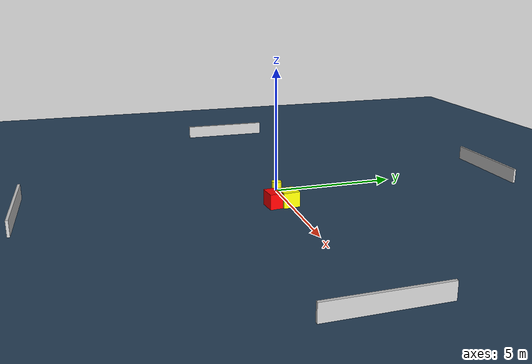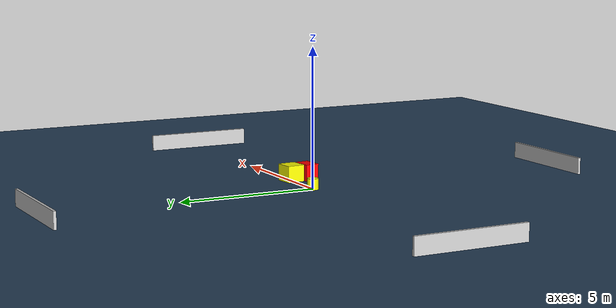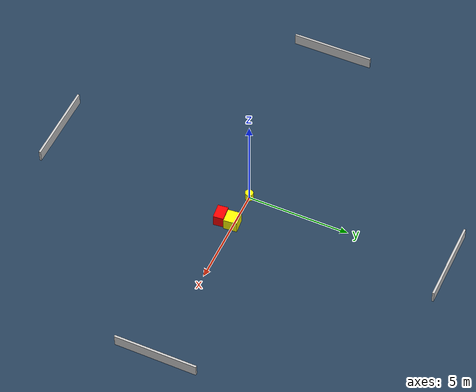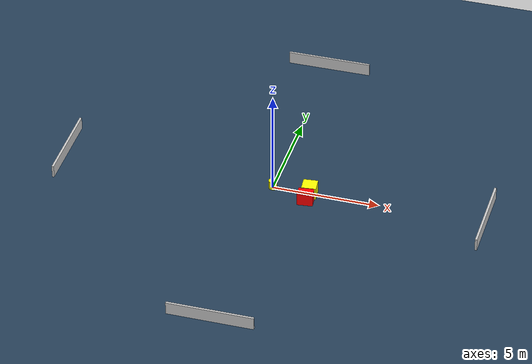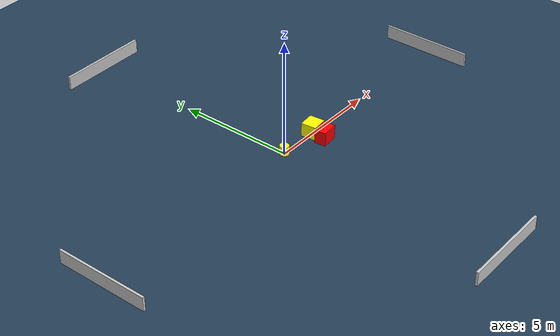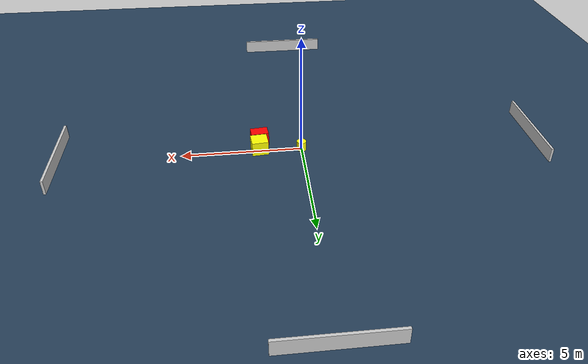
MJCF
<?xml version="1.0" ?>
<mujoco model="generated_environment">
  <option timestep="0.01" integrator="RK4" cone="elliptic"/>
  <default>
    <geom density="1"/>
  </default>
  <asset>
    <texture builtin="gradient" height="3072" name="skybox" rgb1="0.3 0.5 0.7" rgb2="0 0 0" type="skybox" width="512"/>
    <texture builtin="checker" height="300" name="groundplane" rgb1="0.2 0.3 0.4" rgb2="0.1 0.2 0.3" type="2d" width="300"/>
    <material name="groundplane" reflectance="0.2" texrepeat="5 5" texture="groundplane"/>
  </asset>
  <worldbody>
    <light dir="0 0 -1" directional="true" pos="0 0 1.5"/>
    <geom condim="3" friction="0.5 0.005 0.001" material="groundplane" name="floor" pos="0 0 0" size="0 0 0.05" type="plane"/>
    <body name="walls">
      <geom name="wall_1" condim="4" pos="-10.0 0.0 0.3" rgba="0.800000011920929 0.800000011920929 0.800000011920929 1.0" size="0.05 2.0 0.3" type="box"/>
      <geom name="wall_2" condim="4" pos="10.0 0.0 0.3" rgba="0.800000011920929 0.800000011920929 0.800000011920929 1.0" size="0.05 2.0 0.3" type="box"/>
      <geom name="wall_3" condim="4" pos="0.0 -10.0 0.3" rgba="0.800000011920929 0.800000011920929 0.800000011920929 1.0" size="2.0 0.05 0.3" type="box"/>
      <geom name="wall_4" condim="4" pos="0.0 10.0 0.3" rgba="0.800000011920929 0.800000011920929 0.800000011920929 1.0" size="2.0 0.05 0.3" type="box"/>
    </body>
    <body name="robot">
      <joint name="joint_x" type="slide" pos="0 0 0" axis="1 0 0"/>
      <joint name="joint_y" type="slide" pos="0 0 0" axis="0 1 0"/>
      <geom name="robot" type="cylinder" pos="0.0 0.0 0.2" size="0.2 0.2 0.0" mass="5.0" friction="1.0 0.005 0.0001" condim="4" rgba="1.0 1.0 0.0 1.0"/>
    </body>
    <body name="obstacle_1_movable">
      <geom name="obstacle_1_movable" condim="4" pos="1.761460737443355 -0.04996569276640896 0.3" euler="0 0 95.57146926969827" friction="0.0 0.005 0.001" rgba="1.0 1.0 0.0 1.0" size="0.32991174436361703 0.3409837709227471 0.3" type="box" mass="0.1"/>
      <joint type="free"/>
    </body>
    <body name="obstacle_2_static">
      <geom name="obstacle_2_static" condim="4" pos="1.7317266401232265 -0.6629977213231474 0.3" euler="0 0 186.08142164591945" friction="0.0 0.005 0.001" rgba="1.0 0.0 0.0 1.0" size="0.3639368835823868 0.2530659388293558 0.3" type="box"/>
    </body>
  </worldbody>
  <actuator>
    <motor name="actuator_x" joint="joint_x" gear="1" ctrlrange="-1 1"/>
    <motor name="actuator_y" joint="joint_y" gear="1" ctrlrange="-1 1"/>
  </actuator>
</mujoco>
